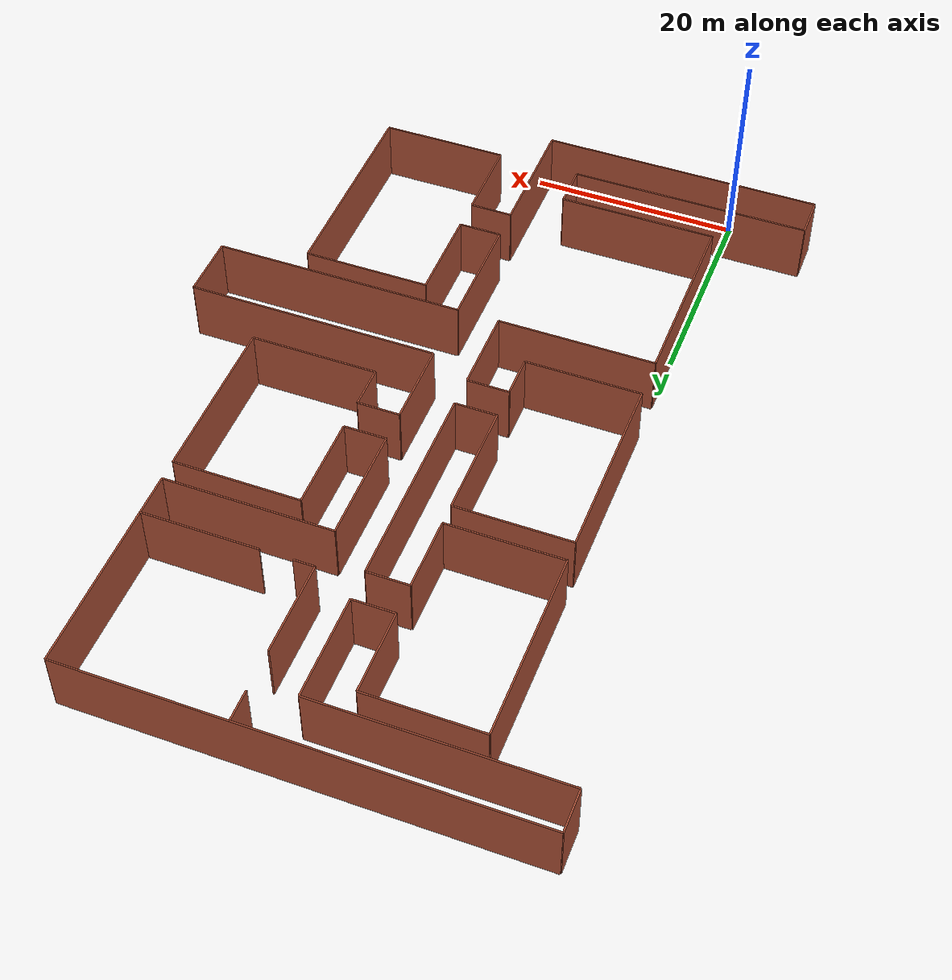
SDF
<?xml version='1.0'?>
<sdf version='1.7'>
  <model name='HZI'>
    <pose>0 0 0 0 0 0</pose>

    <link name='Wall_0'>
      <collision name='Wall_0_Collision'>
        <pose>13.5 0 3 0 0 0</pose>
        <geometry><box><size>27 0.15 6</size></box></geometry>
      </collision>

      <visual name='Wall_0_Visual'>
        <pose>13.5 0 3 0 0 0</pose>
        <geometry><box><size>27 0.15 6</size></box></geometry>
        <material>
          <script>
            <uri>file://media/materials/scripts/gazebo.material</uri>
            <name>Gazebo/Bricks</name>
          </script>
          <ambient>1 1 1 1</ambient>
        </material>
        <meta>
          <layer>0</layer>
        </meta>
      </visual>

      <pose>-8 0 0 0 0 0</pose>
    </link>

    <link name='Wall_1'>
      <collision name='Wall_1_Collision'>
        <pose>6 0 3 0 0 0</pose>
        <geometry><box><size>12 0.15 6</size></box></geometry>
      </collision>

      <visual name='Wall_1_Visual'>
        <pose>6 0 3 0 0 0</pose>
        <geometry><box><size>12 0.15 6</size></box></geometry>
        <material>
          <script>
            <uri>file://media/materials/scripts/gazebo.material</uri>
            <name>Gazebo/Bricks</name>
          </script>
          <ambient>1 1 1 1</ambient>
        </material>
        <meta>
          <layer>0</layer>
        </meta>
      </visual>

      <pose>19 0 0 0 0 1.5708</pose>
    </link>

    <link name='Wall_2'>

      <collision name='Wall_2_Collision'>
        <pose>2 0 3 0 0 0</pose>
        <geometry><box><size>4 0.15 6</size></box></geometry>
      </collision>
      <visual name='Wall_2_Visual'>
        <pose>2 0 3 0 0 0</pose>
        <geometry><box><size>4 0.15 6</size></box></geometry>
        <material>
          <script>
            <uri>file://media/materials/scripts/gazebo.material</uri>
            <name>Gazebo/Bricks</name>
          </script>
          <ambient>1 1 1 1</ambient>
        </material>
        <meta>
          <layer>0</layer>
        </meta>
      </visual>

      <pose>19 12 0 0 0 0</pose>
    </link>

    <link name='Wall_3'>
      <collision name='Wall_3_Collision'>
        <pose>4 0 3 0 0 0</pose>
        <geometry><box><size>8 0.15 6</size></box></geometry>
      </collision>

      <visual name='Wall_3_Visual'>
        <pose>4 0 3 0 0 0</pose>
        <geometry><box><size>8 0.15 6</size></box></geometry>
        <material>
          <script>
            <uri>file://media/materials/scripts/gazebo.material</uri>
            <name>Gazebo/Bricks</name>
          </script>
          <ambient>1 1 1 1</ambient>
        </material>
        <meta>
          <layer>0</layer>
        </meta>
      </visual>

      <pose>23 4 0 0 0 1.5708</pose>
    </link>

    <link name='Wall_4'>
      <collision name='Wall_4_Collision'>
        <pose>6 0 3 0 0 0</pose>
        <geometry><box><size>12 0.15 6</size></box></geometry>
      </collision>

      <visual name='Wall_4_Visual'>
        <pose>6 0 3 0 0 0</pose>
        <geometry><box><size>12 0.15 6</size></box></geometry>
        <material>
          <script>
            <uri>file://media/materials/scripts/gazebo.material</uri>
            <name>Gazebo/Bricks</name>
          </script>
          <ambient>1 1 1 1</ambient>
        </material>
        <meta>
          <layer>0</layer>
        </meta>
      </visual>

      <pose>23 4 0 0 0 0</pose>
    </link>

    <link name='Wall_5'>
      <collision name='Wall_5_Collision'>
        <pose>10 0 3 0 0 0</pose>
        <geometry><box><size>20 0.15 6</size></box></geometry>
      </collision>

      <visual name='Wall_5_Visual'>
        <pose>10 0 3 0 0 0</pose>
        <geometry><box><size>20 0.15 6</size></box></geometry>
        <material>
          <script>
            <uri>file://media/materials/scripts/gazebo.material</uri>
            <name>Gazebo/Bricks</name>
          </script>
          <ambient>1 1 1 1</ambient>
        </material>
        <meta>
          <layer>0</layer>
        </meta>
      </visual>

      <pose>35 4 0 0 0 1.5708</pose>
    </link>

    <link name='Wall_6'>
      <collision name='Wall_6_Collision'>
        <pose>6 0 3 0 0 0</pose>
        <geometry><box><size>12 0.15 6</size></box></geometry>
      </collision>

      <visual name='Wall_6_Visual'>
        <pose>6 0 3 0 0 0</pose>
        <geometry><box><size>12 0.15 6</size></box></geometry>
        <material>
          <script>
            <uri>file://media/materials/scripts/gazebo.material</uri>
            <name>Gazebo/Bricks</name>
          </script>
          <ambient>1 1 1 1</ambient>
        </material>
        <meta>
          <layer>0</layer>
        </meta>
      </visual>

      <pose>23 24 0 0 0 0</pose>
    </link>

    <link name='Wall_7'>
      <collision name='Wall_7_Collision'>
        <pose>4.5 0 3 0 0 0</pose>
        <geometry><box><size>9 0.15 6</size></box></geometry>
      </collision>

      <visual name='Wall_7_Visual'>
        <pose>4.5 0 3 0 0 0</pose>
        <geometry><box><size>9 0.15 6</size></box></geometry>
        <material>
          <script>
            <uri>file://media/materials/scripts/gazebo.material</uri>
            <name>Gazebo/Bricks</name>
          </script>
          <ambient>1 1 1 1</ambient>
        </material>
        <meta>
          <layer>0</layer>
        </meta>
      </visual>

      <pose>23 15 0 0 0 1.5708</pose>
    </link>

    <link name='Wall_8'>
      <collision name='Wall_8_Collision'>
        <pose>2 0 3 0 0 0</pose>
        <geometry><box><size>4 0.15 6</size></box></geometry>
      </collision>

      <visual name='Wall_8_Visual'>
        <pose>2 0 3 0 0 0</pose>
        <geometry><box><size>4 0.15 6</size></box></geometry>
        <material>
          <script>
            <uri>file://media/materials/scripts/gazebo.material</uri>
            <name>Gazebo/Bricks</name>
          </script>
          <ambient>1 1 1 1</ambient>
        </material>
        <meta>
          <layer>0</layer>
        </meta>
      </visual>

      <pose>19 15 0 0 0 0</pose>
    </link>

    <link name='Wall_9'>
      <collision name='Wall_9_Collision'>
        <pose>5.5 0 3 0 0 0</pose>
        <geometry><box><size>11 0.15 6</size></box></geometry>
      </collision>

      <visual name='Wall_9_Visual'>
        <pose>5.5 0 3 0 0 0</pose>
        <geometry><box><size>11 0.15 6</size></box></geometry>
        <material>
          <script>
            <uri>file://media/materials/scripts/gazebo.material</uri>
            <name>Gazebo/Bricks</name>
          </script>
          <ambient>1 1 1 1</ambient>
        </material>
        <meta>
          <layer>0</layer>
        </meta>
      </visual>

      <pose>19 15 0 0 0 1.5708</pose>
    </link>

    <link name='Wall_10'>
      <collision name='Wall_10_Collision'>
        <pose>12 0 3 0 0 0</pose>
        <geometry><box><size>24 0.15 6</size></box></geometry>
      </collision>

      <visual name='Wall_10_Visual'>
        <pose>12 0 3 0 0 0</pose>
        <geometry><box><size>24 0.15 6</size></box></geometry>
        <material>
          <script>
            <uri>file://media/materials/scripts/gazebo.material</uri>
            <name>Gazebo/Bricks</name>
          </script>
          <ambient>1 1 1 1</ambient>
        </material>
        <meta>
          <layer>0</layer>
        </meta>
      </visual>

      <pose>19 26 0 0 0 0</pose>
    </link>

    <link name='Wall_11'>
      <collision name='Wall_11_Collision'>
        <pose>3 0 3 0 0 0</pose>
        <geometry><box><size>6 0.15 6</size></box></geometry>
      </collision>

      <visual name='Wall_11_Visual'>
        <pose>3 0 3 0 0 0</pose>
        <geometry><box><size>6 0.15 6</size></box></geometry>
        <material>
          <script>
            <uri>file://media/materials/scripts/gazebo.material</uri>
            <name>Gazebo/Bricks</name>
          </script>
          <ambient>1 1 1 1</ambient>
        </material>
        <meta>
          <layer>0</layer>
        </meta>
      </visual>

      <pose>43 26 0 0 0 1.5708</pose>
    </link>

    <link name='Wall_12'>
      <collision name='Wall_12_Collision'>
        <pose>12 0 3 0 0 0</pose>
        <geometry><box><size>24 0.15 6</size></box></geometry>
      </collision>

      <visual name='Wall_12_Visual'>
        <pose>12 0 3 0 0 0</pose>
        <geometry><box><size>24 0.15 6</size></box></geometry>
        <material>
          <script>
            <uri>file://media/materials/scripts/gazebo.material</uri>
            <name>Gazebo/Bricks</name>
          </script>
          <ambient>1 1 1 1</ambient>
        </material>
        <meta>
          <layer>0</layer>
        </meta>
      </visual>

      <pose>19 32 0 0 0 0</pose>
    </link>

    <link name='Wall_13'>
      <collision name='Wall_13_Collision'>
        <pose>11.5 0 3 0 0 0</pose>
        <geometry><box><size>23 0.15 6</size></box></geometry>
      </collision>

      <visual name='Wall_13_Visual'>
        <pose>11.5 0 3 0 0 0</pose>
        <geometry><box><size>23 0.15 6</size></box></geometry>
        <material>
          <script>
            <uri>file://media/materials/scripts/gazebo.material</uri>
            <name>Gazebo/Bricks</name>
          </script>
          <ambient>1 1 1 1</ambient>
        </material>
        <meta>
          <layer>0</layer>
        </meta>
      </visual>

      <pose>-8 4 0 0 0 0</pose>
    </link>

    <link name='Wall_14'>
      <collision name='Wall_14_Collision'>
        <pose>2 0 3 0 0 0</pose>
        <geometry><box><size>4 0.15 6</size></box></geometry>
      </collision>

      <visual name='Wall_14_Visual'>
        <pose>2 0 3 0 0 0</pose>
        <geometry><box><size>4 0.15 6</size></box></geometry>
        <material>
          <script>
            <uri>file://media/materials/scripts/gazebo.material</uri>
            <name>Gazebo/Bricks</name>
          </script>
          <ambient>1 1 1 1</ambient>
        </material>
        <meta>
          <layer>0</layer>
        </meta>
      </visual>

      <pose>15 4 0 0 0 1.5708</pose>
    </link>

    <link name='Wall_15'>
      <collision name='Wall_15_Collision'>
        <pose>7.5 0 3 0 0 0</pose>
        <geometry><box><size>15 0.15 6</size></box></geometry>
      </collision>

      <visual name='Wall_15_Visual'>
        <pose>7.5 0 3 0 0 0</pose>
        <geometry><box><size>15 0.15 6</size></box></geometry>
        <material>
          <script>
            <uri>file://media/materials/scripts/gazebo.material</uri>
            <name>Gazebo/Bricks</name>
          </script>
          <ambient>1 1 1 1</ambient>
        </material>
        <meta>
          <layer>0</layer>
        </meta>
      </visual>

      <pose>0 8 0 0 0 0</pose>
    </link>

    <link name='Wall_16'>
      <collision name='Wall_16_Collision'>
        <pose>2 0 3 0 0 0</pose>
        <geometry><box><size>4 0.15 6</size></box></geometry>
      </collision>

      <visual name='Wall_16_Visual'>
        <pose>2 0 3 0 0 0</pose>
        <geometry><box><size>4 0.15 6</size></box></geometry>
        <material>
          <script>
            <uri>file://media/materials/scripts/gazebo.material</uri>
            <name>Gazebo/Bricks</name>
          </script>
          <ambient>1 1 1 1</ambient>
        </material>
        <meta>
          <layer>0</layer>
        </meta>
      </visual>

      <pose>-8 0 0 0 0 1.5708</pose>
    </link>

    <link name='Wall_17'>
      <collision name='Wall_17_Collision'>
        <pose>7.5 0 3 0 0 0</pose>
        <geometry><box><size>15 0.15 6</size></box></geometry>
      </collision>

      <visual name='Wall_17_Visual'>
        <pose>7.5 0 3 0 0 0</pose>
        <geometry><box><size>15 0.15 6</size></box></geometry>
        <material>
          <script>
            <uri>file://media/materials/scripts/gazebo.material</uri>
            <name>Gazebo/Bricks</name>
          </script>
          <ambient>1 1 1 1</ambient>
        </material>
        <meta>
          <layer>0</layer>
        </meta>
      </visual>

      <pose>0 26 0 0 0 0</pose>
    </link>

    <link name='Wall_18'>
      <collision name='Wall_18_Collision'>
        <pose>9 0 3 0 0 0</pose>
        <geometry><box><size>18 0.15 6</size></box></geometry>
      </collision>

      <visual name='Wall_18_Visual'>
        <pose>9 0 3 0 0 0</pose>
        <geometry><box><size>18 0.15 6</size></box></geometry>
        <material>
          <script>
            <uri>file://media/materials/scripts/gazebo.material</uri>
            <name>Gazebo/Bricks</name>
          </script>
          <ambient>1 1 1 1</ambient>
        </material>
        <meta>
          <layer>0</layer>
        </meta>
      </visual>

      <pose>0 8 0 0 0 1.5708</pose>
    </link>

    <link name='Wall_19'>
      <collision name='Wall_19_Collision'>
        <pose>5.5 0 3 0 0 0</pose>
        <geometry><box><size>11 0.15 6</size></box></geometry>
      </collision>

      <visual name='Wall_19_Visual'>
        <pose>5.5 0 3 0 0 0</pose>
        <geometry><box><size>11 0.15 6</size></box></geometry>
        <material>
          <script>
            <uri>file://media/materials/scripts/gazebo.material</uri>
            <name>Gazebo/Bricks</name>
          </script>
          <ambient>1 1 1 1</ambient>
        </material>
        <meta>
          <layer>0</layer>
        </meta>
      </visual>

      <pose>0 30 0 0 0 0</pose>
    </link>

    <link name='Wall_20'>
      <collision name='Wall_20_Collision'>
        <pose>2 0 3 0 0 0</pose>
        <geometry><box><size>4 0.15 6</size></box></geometry>
      </collision>

      <visual name='Wall_20_Visual'>
        <pose>2 0 3 0 0 0</pose>
        <geometry><box><size>4 0.15 6</size></box></geometry>
        <material>
          <script>
            <uri>file://media/materials/scripts/gazebo.material</uri>
            <name>Gazebo/Bricks</name>
          </script>
          <ambient>1 1 1 1</ambient>
        </material>
        <meta>
          <layer>0</layer>
        </meta>
      </visual>

      <pose>11 30 0 0 0 1.5708</pose>
    </link>

    <link name='Wall_21'>
      <collision name='Wall_21_Collision'>
        <pose>2 0 3 0 0 0</pose>
        <geometry><box><size>4 0.15 6</size></box></geometry>
      </collision>

      <visual name='Wall_21_Visual'>
        <pose>2 0 3 0 0 0</pose>
        <geometry><box><size>4 0.15 6</size></box></geometry>
        <material>
          <script>
            <uri>file://media/materials/scripts/gazebo.material</uri>
            <name>Gazebo/Bricks</name>
          </script>
          <ambient>1 1 1 1</ambient>
        </material>
        <meta>
          <layer>0</layer>
        </meta>
      </visual>

      <pose>11 34 0 0 0 0</pose>
    </link>

    <link name='Wall_22'>
      <collision name='Wall_22_Collision'>
        <pose>4 0 3 0 0 0</pose>
        <geometry><box><size>8 0.15 6</size></box></geometry>
      </collision>

      <visual name='Wall_22_Visual'>
        <pose>4 0 3 0 0 0</pose>
        <geometry><box><size>8 0.15 6</size></box></geometry>
        <material>
          <script>
            <uri>file://media/materials/scripts/gazebo.material</uri>
            <name>Gazebo/Bricks</name>
          </script>
          <ambient>1 1 1 1</ambient>
        </material>
        <meta>
          <layer>0</layer>
        </meta>
      </visual>

      <pose>15 26 0 0 0 1.5708</pose>
    </link>

    <link name='Wall_23'>
      <collision name='Wall_23_Collision'>
        <pose>9 0 3 0 0 0</pose>
        <geometry><box><size>18 0.15 6</size></box></geometry>
      </collision>

      <visual name='Wall_23_Visual'>
        <pose>9 0 3 0 0 0</pose>
        <geometry><box><size>18 0.15 6</size></box></geometry>
        <material>
          <script>
            <uri>file://media/materials/scripts/gazebo.material</uri>
            <name>Gazebo/Bricks</name>
          </script>
          <ambient>1 1 1 1</ambient>
        </material>
        <meta>
          <layer>0</layer>
        </meta>
      </visual>

      <pose>0 30 0 0 0 1.5708</pose>
    </link>

    <link name='Wall_24'>
      <collision name='Wall_24_Collision'>
        <pose>5.5 0 3 0 0 0</pose>
        <geometry><box><size>11 0.15 6</size></box></geometry>
      </collision>

      <visual name='Wall_21_Visual'>
        <pose>5.5 0 3 0 0 0</pose>
        <geometry><box><size>11 0.15 6</size></box></geometry>
        <material>
          <script>
            <uri>file://media/materials/scripts/gazebo.material</uri>
            <name>Gazebo/Bricks</name>
          </script>
          <ambient>1 1 1 1</ambient>
        </material>
        <meta>
          <layer>0</layer>
        </meta>
      </visual>

      <pose>0 48 0 0 0 0</pose>
    </link>

    <link name='Wall_25'>
      <collision name='Wall_25_Collision'>
        <pose>5.5 0 3 0 0 0</pose>
        <geometry><box><size>11 0.15 6</size></box></geometry>
      </collision>

      <visual name='Wall_25_Visual'>
        <pose>5.5 0 3 0 0 0</pose>
        <geometry><box><size>11 0.15 6</size></box></geometry>
        <material>
          <script>
            <uri>file://media/materials/scripts/gazebo.material</uri>
            <name>Gazebo/Bricks</name>
          </script>
          <ambient>1 1 1 1</ambient>
        </material>
        <meta>
          <layer>0</layer>
        </meta>
      </visual>

      <pose>11 37 0 0 0 1.5708</pose>
    </link>

    <link name='Wall_26'>
      <collision name='Wall_26_Collision'>
        <pose>2 0 3 0 0 0</pose>
        <geometry><box><size>4 0.15 6</size></box></geometry>
      </collision>

      <visual name='Wall_26_Visual'>
        <pose>2 0 3 0 0 0</pose>
        <geometry><box><size>4 0.15 6</size></box></geometry>
        <material>
          <script>
            <uri>file://media/materials/scripts/gazebo.material</uri>
            <name>Gazebo/Bricks</name>
          </script>
          <ambient>1 1 1 1</ambient>
        </material>
        <meta>
          <layer>0</layer>
        </meta>
      </visual>

      <pose>11 37 0 0 0 0</pose>
    </link>

    <link name='Wall_27'>
      <collision name='Wall_27_Collision'>
        <pose>10 0 3 0 0 0</pose>
        <geometry><box><size>20 0.15 6</size></box></geometry>
      </collision>

      <visual name='Wall_27_Visual'>
        <pose>10 0 3 0 0 0</pose>
        <geometry><box><size>20 0.15 6</size></box></geometry>
        <material>
          <script>
            <uri>file://media/materials/scripts/gazebo.material</uri>
            <name>Gazebo/Bricks</name>
          </script>
          <ambient>1 1 1 1</ambient>
        </material>
        <meta>
          <layer>0</layer>
        </meta>
      </visual>

      <pose>15 37 0 0 0 1.5708</pose>
    </link>

    <link name='Wall_28'>
      <collision name='Wall_28_Collision'>
        <pose>11.5 0 3 0 0 0</pose>
        <geometry><box><size>23 0.15 6</size></box></geometry>
      </collision>

      <visual name='Wall_28_Visual'>
        <pose>11.5 0 3 0 0 0</pose>
        <geometry><box><size>23 0.15 6</size></box></geometry>
        <material>
          <script>
            <uri>file://media/materials/scripts/gazebo.material</uri>
            <name>Gazebo/Bricks</name>
          </script>
          <ambient>1 1 1 1</ambient>
        </material>
        <meta>
          <layer>0</layer>
        </meta>
      </visual>

      <pose>-8 70 0 0 0 0</pose>
    </link>

    <link name='Wall_29'>
      <collision name='Wall_29_Collision'>
        <pose>2 0 3 0 0 0</pose>
        <geometry><box><size>4 0.15 6</size></box></geometry>
      </collision>

      <visual name='Wall_29_Visual'>
        <pose>2 0 3 0 0 0</pose>
        <geometry><box><size>4 0.15 6</size></box></geometry>
        <material>
          <script>
            <uri>file://media/materials/scripts/gazebo.material</uri>
            <name>Gazebo/Bricks</name>
          </script>
          <ambient>1 1 1 1</ambient>
        </material>
        <meta>
          <layer>0</layer>
        </meta>
      </visual>

      <pose>-8 70 0 0 0 1.5708</pose>
    </link>

    <link name='Wall_30'>
      <collision name='Wall_30_Collision'>
        <pose>21.5 0 3 0 0 0</pose>
        <geometry><box><size>43 0.15 6</size></box></geometry>
      </collision>

      <visual name='Wall_30_Visual'>
        <pose>21.5 0 3 0 0 0</pose>
        <geometry><box><size>43 0.15 6</size></box></geometry>
        <material>
          <script>
            <uri>file://media/materials/scripts/gazebo.material</uri>
            <name>Gazebo/Bricks</name>
          </script>
          <ambient>1 1 1 1</ambient>
        </material>
        <meta>
          <layer>0</layer>
        </meta>
      </visual>

      <pose>-8 74 0 0 0 0</pose>
    </link>

    <link name='Wall_31'>
      <collision name='Wall_31_Collision'>
        <pose>4 0 3 0 0 0</pose>
        <geometry><box><size>8 0.15 6</size></box></geometry>
      </collision>

      <visual name='Wall_31_Visual'>
        <pose>4 0 3 0 0 0</pose>
        <geometry><box><size>8 0.15 6</size></box></geometry>
        <material>
          <script>
            <uri>file://media/materials/scripts/gazebo.material</uri>
            <name>Gazebo/Bricks</name>
          </script>
          <ambient>1 1 1 1</ambient>
        </material>
        <meta>
          <layer>0</layer>
        </meta>
      </visual>

      <pose>19 32 0 0 0 1.5708</pose>
    </link>

   <link name='Wall_32'>
      <collision name='Wall_32_Collision'>
        <pose>2 0 3 0 0 0</pose>
        <geometry><box><size>4 0.15 6</size></box></geometry>
      </collision>

      <visual name='Wall_32_Visual'>
        <pose>2 0 3 0 0 0</pose>
        <geometry><box><size>4 0.15 6</size></box></geometry>
        <material>
          <script>
            <uri>file://media/materials/scripts/gazebo.material</uri>
            <name>Gazebo/Bricks</name>
          </script>
          <ambient>1 1 1 1</ambient>
        </material>
        <meta>
          <layer>0</layer>
        </meta>
      </visual>

      <pose>19 40 0 0 0 0</pose>
    </link>

   <link name='Wall_33'>
      <collision name='Wall_33_Collision'>
        <pose>2 0 3 0 0 0</pose>
        <geometry><box><size>4 0.15 6</size></box></geometry>
      </collision>

      <visual name='Wall_33_Visual'>
        <pose>2 0 3 0 0 0</pose>
        <geometry><box><size>4 0.15 6</size></box></geometry>
        <material>
          <script>
            <uri>file://media/materials/scripts/gazebo.material</uri>
            <name>Gazebo/Bricks</name>
          </script>
          <ambient>1 1 1 1</ambient>
        </material>
        <meta>
          <layer>0</layer>
        </meta>
      </visual>

      <pose>23 36 0 0 0 1.5708</pose>
    </link>

   <link name='Wall_34'>
      <collision name='Wall_34_Collision'>
        <pose>6 0 3 0 0 0</pose>
        <geometry><box><size>12 0.15 6</size></box></geometry>
      </collision>

      <visual name='Wall_34_Visual'>
        <pose>6 0 3 0 0 0</pose>
        <geometry><box><size>12 0.15 6</size></box></geometry>
        <material>
          <script>
            <uri>file://media/materials/scripts/gazebo.material</uri>
            <name>Gazebo/Bricks</name>
          </script>
          <ambient>1 1 1 1</ambient>
        </material>
        <meta>
          <layer>0</layer>
        </meta>
      </visual>

      <pose>23 36 0 0 0 0</pose>
    </link>

   <link name='Wall_35'>
      <collision name='Wall_35_Collision'>
        <pose>2 0 3 0 0 0</pose>
        <geometry><box><size>4 0.15 6</size></box></geometry>
      </collision>

      <visual name='Wall_35_Visual'>
        <pose>2 0 3 0 0 0</pose>
        <geometry><box><size>4 0.15 6</size></box></geometry>
        <material>
          <script>
            <uri>file://media/materials/scripts/gazebo.material</uri>
            <name>Gazebo/Bricks</name>
          </script>
          <ambient>1 1 1 1</ambient>
        </material>
        <meta>
          <layer>0</layer>
        </meta>
      </visual>

      <pose>19 43 0 0 0 0</pose>
    </link>

   <link name='Wall_36'>
      <collision name='Wall_36_Collision'>
        <pose>8 0 3 0 0 0</pose>
        <geometry><box><size>16 0.15 6</size></box></geometry>
      </collision>

      <visual name='Wall_36_Visual'>
        <pose>8 0 3 0 0 0</pose>
        <geometry><box><size>16 0.15 6</size></box></geometry>
        <material>
          <script>
            <uri>file://media/materials/scripts/gazebo.material</uri>
            <name>Gazebo/Bricks</name>
          </script>
          <ambient>1 1 1 1</ambient>
        </material>
        <meta>
          <layer>0</layer>
        </meta>
      </visual>

      <pose>35 36 0 0 0 1.5708</pose>
    </link>

   <link name='Wall_37'>
      <collision name='Wall_37_Collision'>
        <pose>6 0 3 0 0 0</pose>
        <geometry><box><size>12 0.15 6</size></box></geometry>
      </collision>

      <visual name='Wall_37_Visual'>
        <pose>6 0 3 0 0 0</pose>
        <geometry><box><size>12 0.15 6</size></box></geometry>
        <material>
          <script>
            <uri>file://media/materials/scripts/gazebo.material</uri>
            <name>Gazebo/Bricks</name>
          </script>
          <ambient>1 1 1 1</ambient>
        </material>
        <meta>
          <layer>0</layer>
        </meta>
      </visual>

      <pose>23 52 0 0 0 0</pose>
    </link>

   <link name='Wall_38'>
      <collision name='Wall_38_Collision'>
        <pose>4.5 0 3 0 0 0</pose>
        <geometry><box><size>9 0.15 6</size></box></geometry>
      </collision>

      <visual name='Wall_38_Visual'>
        <pose>4.5 0 3 0 0 0</pose>
        <geometry><box><size>9 0.15 6</size></box></geometry>
        <material>
          <script>
            <uri>file://media/materials/scripts/gazebo.material</uri>
            <name>Gazebo/Bricks</name>
          </script>
          <ambient>1 1 1 1</ambient>
        </material>
        <meta>
          <layer>0</layer>
        </meta>
      </visual>

      <pose>23 43 0 0 0 1.5708</pose>
    </link>

   <link name='Wall_39'>
      <collision name='Wall_39_Collision'>
        <pose>5.5 0 3 0 0 0</pose>
        <geometry><box><size>11 0.15 6</size></box></geometry>
      </collision>

      <visual name='Wall_39_Visual'>
        <pose>5.5 0 3 0 0 0</pose>
        <geometry><box><size>11 0.15 6</size></box></geometry>
        <material>
          <script>
            <uri>file://media/materials/scripts/gazebo.material</uri>
            <name>Gazebo/Bricks</name>
          </script>
          <ambient>1 1 1 1</ambient>
        </material>
        <meta>
          <layer>0</layer>
        </meta>
      </visual>

      <pose>19 43 0 0 0 1.5708</pose>
    </link>

   <link name='Wall_40'>
      <collision name='Wall_40_Collision'>
        <pose>8 0 3 0 0 0</pose>
        <geometry><box><size>16 0.15 6</size></box></geometry>
      </collision>

      <visual name='Wall_40_Visual'>
        <pose>8 0 3 0 0 0</pose>
        <geometry><box><size>16 0.15 6</size></box></geometry>
        <material>
          <script>
            <uri>file://media/materials/scripts/gazebo.material</uri>
            <name>Gazebo/Bricks</name>
          </script>
          <ambient>1 1 1 1</ambient>
        </material>
        <meta>
          <layer>0</layer>
        </meta>
      </visual>

      <pose>19 54 0 0 0 0</pose>
    </link>

   <link name='Wall_41'>
      <collision name='Wall_41_Collision'>
        <pose>10 0 3 0 0 0</pose>
        <geometry><box><size>20 0.15 6</size></box></geometry>
      </collision>

      <visual name='Wall_41_Visual'>
        <pose>10 0 3 0 0 0</pose>
        <geometry><box><size>20 0.15 6</size></box></geometry>
        <material>
          <script>
            <uri>file://media/materials/scripts/gazebo.material</uri>
            <name>Gazebo/Bricks</name>
          </script>
          <ambient>1 1 1 1</ambient>
        </material>
        <meta>
          <layer>0</layer>
        </meta>
      </visual>

      <pose>35 54 0 0 0 1.5708</pose>
    </link>

   <link name='Wall_42'>
      <collision name='Wall_42_Collision'>
        <pose>1 0 3 0 0 0</pose>
        <geometry><box><size>2 0.15 6</size></box></geometry>
      </collision>

      <visual name='Wall_42_Visual'>
        <pose>1 0 3 0 0 0</pose>
        <geometry><box><size>2 0.15 6</size></box></geometry>
        <material>
          <script>
            <uri>file://media/materials/scripts/gazebo.material</uri>
            <name>Gazebo/Bricks</name>
          </script>
          <ambient>1 1 1 1</ambient>
        </material>
        <meta>
          <layer>0</layer>
        </meta>
      </visual>

      <pose>19 58 0 0 0 0</pose>
    </link>

   <link name='Wall_43'>
      <collision name='Wall_43_Collision'>
        <pose>5.5 0 3 0 0 0</pose>
        <geometry><box><size>11 0.15 6</size></box></geometry>
      </collision>

      <visual name='Wall_43_Visual'>
        <pose>5.5 0 3 0 0 0</pose>
        <geometry><box><size>11 0.15 6</size></box></geometry>
        <material>
          <script>
            <uri>file://media/materials/scripts/gazebo.material</uri>
            <name>Gazebo/Bricks</name>
          </script>
          <ambient>1 1 1 1</ambient>
        </material>
        <meta>
          <layer>0</layer>
        </meta>
      </visual>

      <pose>24 58 0 0 0 0</pose>
    </link>

   <link name='Wall_44'>
      <collision name='Wall_44_Collision'>
        <pose>4.5 0 3 0 0 0</pose>
        <geometry><box><size>9 0.15 6</size></box></geometry>
      </collision>

      <visual name='Wall_44_Visual'>
        <pose>4.5 0 3 0 0 0</pose>
        <geometry><box><size>9 0.15 6</size></box></geometry>
        <material>
          <script>
            <uri>file://media/materials/scripts/gazebo.material</uri>
            <name>Gazebo/Bricks</name>
          </script>
          <ambient>1 1 1 1</ambient>
        </material>
        <meta>
          <layer>0</layer>
        </meta>
      </visual>

      <pose>19 58 0 0 0 1.5708</pose>
    </link>

   <link name='Wall_45'>
      <collision name='Wall_45_Collision'>
        <pose>1.5 0 3 0 0 0</pose>
        <geometry><box><size>3 0.15 6</size></box></geometry>
      </collision>

      <visual name='Wall_45_Visual'>
        <pose>1.5 0 3 0 0 0</pose>
        <geometry><box><size>3 0.15 6</size></box></geometry>
        <material>
          <script>
            <uri>file://media/materials/scripts/gazebo.material</uri>
            <name>Gazebo/Bricks</name>
          </script>
          <ambient>1 1 1 1</ambient>
        </material>
        <meta>
          <layer>0</layer>
        </meta>
      </visual>

      <pose>19 71 0 0 0 1.5708</pose>
    </link>

    <link name='Wall_46'>
      <collision name='Wall_46_Collision'>
        <pose>5 0 3 0 0 0</pose>
        <geometry><box><size>10 0.15 6</size></box></geometry>
      </collision>

      <visual name='Wall_46_Visual'>
        <pose>5 0 3 0 0 0</pose>
        <geometry><box><size>10 0.15 6</size></box></geometry>
        <material>
          <script>
            <uri>file://media/materials/scripts/gazebo.material</uri>
            <name>Gazebo/Bricks</name>
          </script>
          <ambient>1 1 1 1</ambient>
        </material>
        <meta>
          <layer>0</layer>
        </meta>
      </visual>

      <pose>15 60 0 0 0 1.5708</pose>
    </link>

    <link name='Wall_47'>
      <collision name='Wall_47_Collision'>
        <pose>9 0 3 0 0 0</pose>
        <geometry><box><size>18 0.15 6</size></box></geometry>
      </collision>

      <visual name='Wall_47_Visual'>
        <pose>9 0 3 0 0 0</pose>
        <geometry><box><size>18 0.15 6</size></box></geometry>
        <material>
          <script>
            <uri>file://media/materials/scripts/gazebo.material</uri>
            <name>Gazebo/Bricks</name>
          </script>
          <ambient>1 1 1 1</ambient>
        </material>
        <meta>
          <layer>0</layer>
        </meta>
      </visual>

      <pose>0 50 0 0 0 1.5708</pose>
    </link>

    <link name='Wall_48'>
      <collision name='Wall_48_Collision'>
        <pose>3.5 0 3 0 0 0</pose>
        <geometry><box><size>7 0.15 6</size></box></geometry>
      </collision>

      <visual name='Wall_48_Visual'>
        <pose>3.5 0 3 0 0 0</pose>
        <geometry><box><size>7 0.15 6</size></box></geometry>
        <material>
          <script>
            <uri>file://media/materials/scripts/gazebo.material</uri>
            <name>Gazebo/Bricks</name>
          </script>
          <ambient>1 1 1 1</ambient>
        </material>
        <meta>
          <layer>0</layer>
        </meta>
      </visual>

      <pose>11 50 0 0 0 1.5708</pose>
    </link>

    <link name='Wall_49'>
      <collision name='Wall_49_Collision'>
        <pose>4 0 3 0 0 0</pose>
        <geometry><box><size>8 0.15 6</size></box></geometry>
      </collision>

      <visual name='Wall_49_Visual'>
        <pose>4 0 3 0 0 0</pose>
        <geometry><box><size>8 0.15 6</size></box></geometry>
        <material>
          <script>
            <uri>file://media/materials/scripts/gazebo.material</uri>
            <name>Gazebo/Bricks</name>
          </script>
          <ambient>1 1 1 1</ambient>
        </material>
        <meta>
          <layer>0</layer>
        </meta>
      </visual>

      <pose>11 60 0 0 0 1.5708</pose>
    </link>

    <link name='Wall_50'>
      <collision name='Wall_50_Collision'>
        <pose>5.5 0 3 0 0 0</pose>
        <geometry><box><size>11 0.15 6</size></box></geometry>
      </collision>

      <visual name='Wall_50_Visual'>
        <pose>5.5 0 3 0 0 0</pose>
        <geometry><box><size>11 0.15 6</size></box></geometry>
        <material>
          <script>
            <uri>file://media/materials/scripts/gazebo.material</uri>
            <name>Gazebo/Bricks</name>
          </script>
          <ambient>1 1 1 1</ambient>
        </material>
        <meta>
          <layer>0</layer>
        </meta>
      </visual>

      <pose>0 50 0 0 0 0</pose>
    </link>

    <link name='Wall_51'>
      <collision name='Wall_51_Collision'>
        <pose>5.5 0 3 0 0 0</pose>
        <geometry><box><size>11 0.15 6</size></box></geometry>
      </collision>

      <visual name='Wall_51_Visual'>
        <pose>5.5 0 3 0 0 0</pose>
        <geometry><box><size>11 0.15 6</size></box></geometry>
        <material>
          <script>
            <uri>file://media/materials/scripts/gazebo.material</uri>
            <name>Gazebo/Bricks</name>
          </script>
          <ambient>1 1 1 1</ambient>
        </material>
        <meta>
          <layer>0</layer>
        </meta>
      </visual>

      <pose>0 68 0 0 0 0</pose>
    </link>

    <link name='Wall_52'>
      <collision name='Wall_52_Collision'>
        <pose>2 0 3 0 0 0</pose>
        <geometry><box><size>4 0.15 6</size></box></geometry>
      </collision>

      <visual name='Wall_52_Visual'>
        <pose>2 0 3 0 0 0</pose>
        <geometry><box><size>4 0.15 6</size></box></geometry>
        <material>
          <script>
            <uri>file://media/materials/scripts/gazebo.material</uri>
            <name>Gazebo/Bricks</name>
          </script>
          <ambient>1 1 1 1</ambient>
        </material>
        <meta>
          <layer>0</layer>
        </meta>
      </visual>

      <pose>11 57 0 0 0 0</pose>
    </link>

    <link name='Wall_53'>
      <collision name='Wall_53_Collision'>
        <pose>2 0 3 0 0 0</pose>
        <geometry><box><size>4 0.15 6</size></box></geometry>
      </collision>

      <visual name='Wall_53_Visual'>
        <pose>2 0 3 0 0 0</pose>
        <geometry><box><size>4 0.15 6</size></box></geometry>
        <material>
          <script>
            <uri>file://media/materials/scripts/gazebo.material</uri>
            <name>Gazebo/Bricks</name>
          </script>
          <ambient>1 1 1 1</ambient>
        </material>
        <meta>
          <layer>0</layer>
        </meta>
      </visual>

      <pose>11 60 0 0 0 0</pose>
    </link>

<!-- range x -8~40  y 0~74 -->

    <static>1</static>
  </model>
</sdf>
